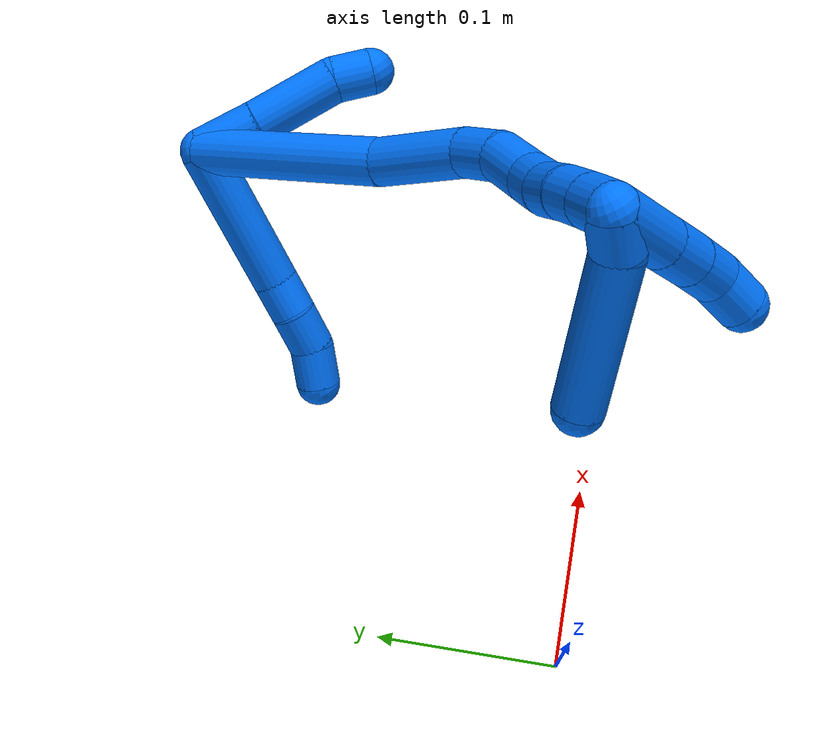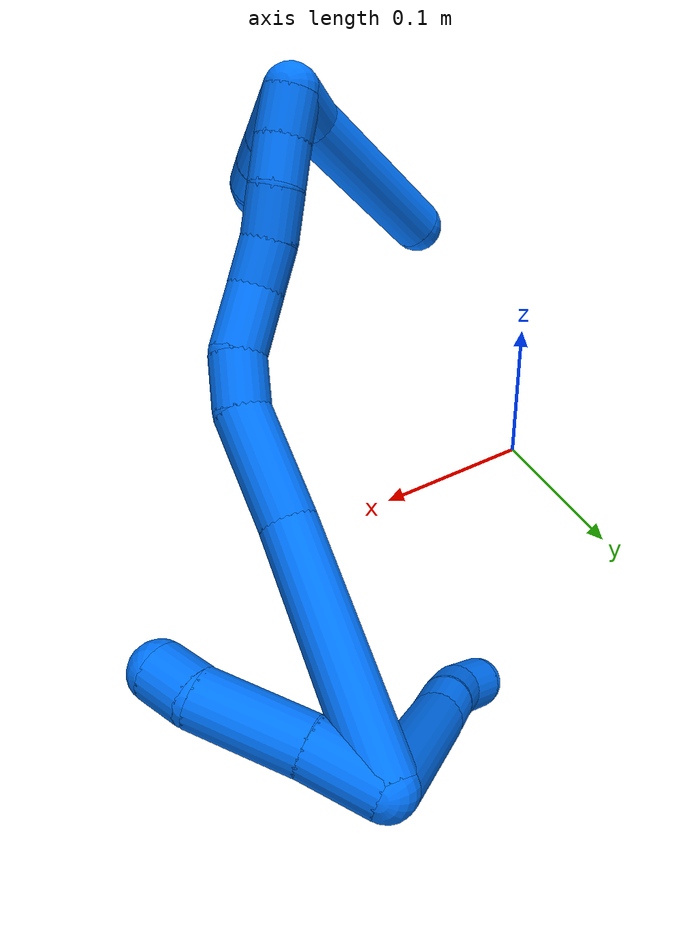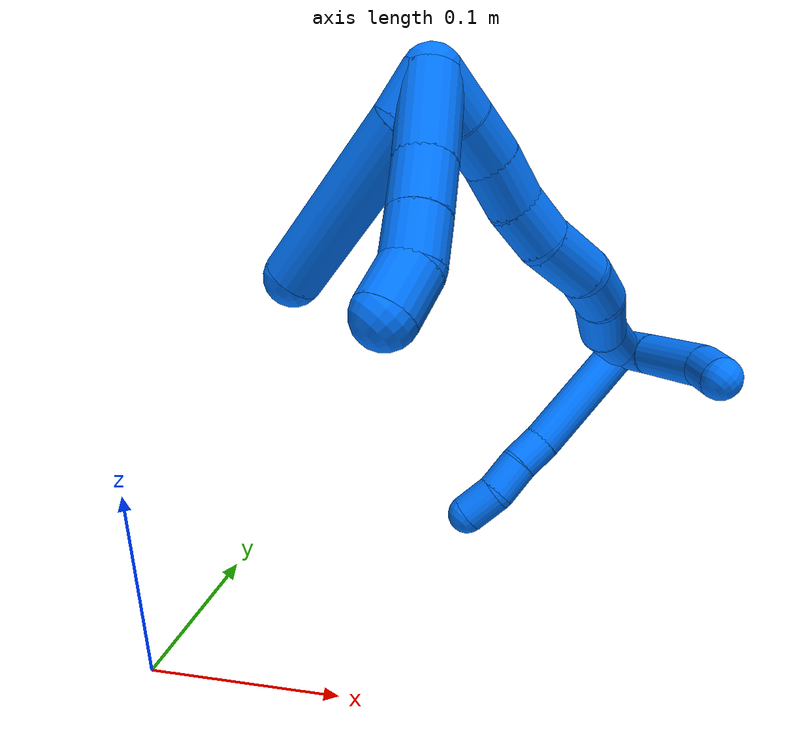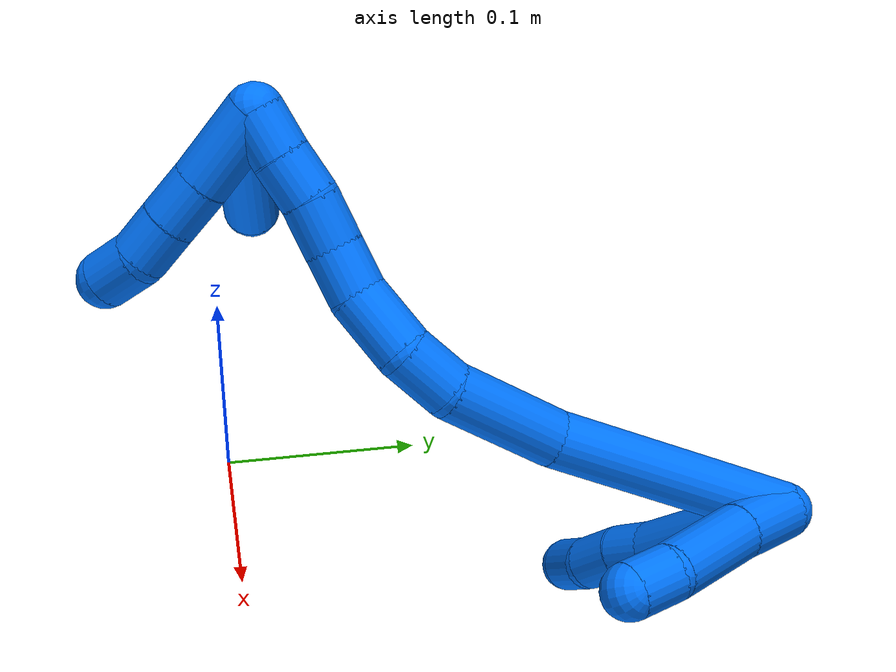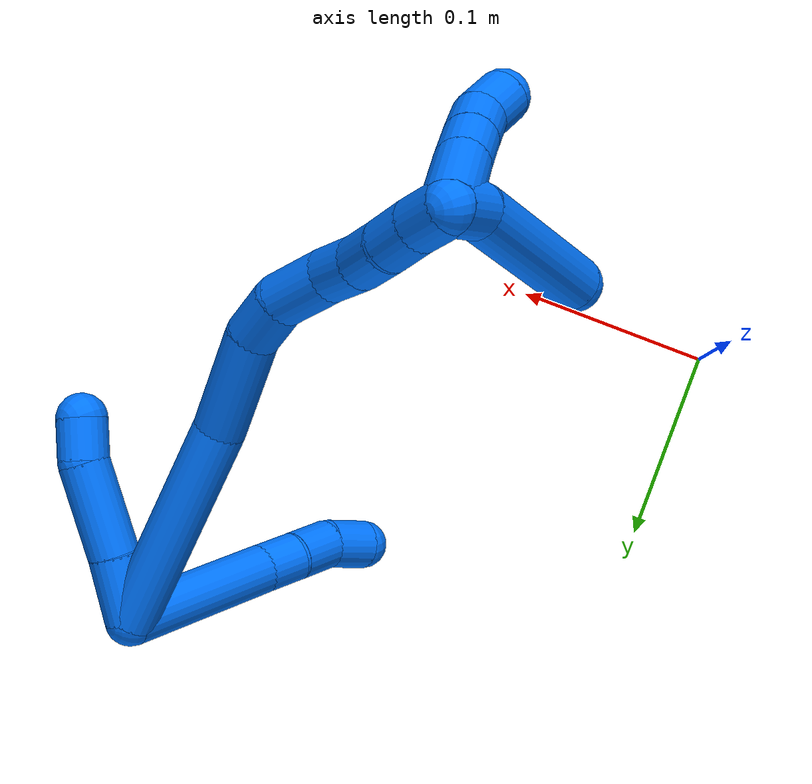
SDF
<sdf version="1.7">
 <world name="default">
  <model name="14">
   <static>0</static>
   <link name="14">
    <collision name="collision-cylinder-e_1_2_8">
     <pose>0.000751 0.001036 -0.041264 -3.1165 0.018184 -1.254</pose>
     <geometry><cylinder><radius>0.0125</radius><length>0.082567</length></cylinder></geometry>
     <surface>
      <friction><ode><mu>1.16</mu><mu2>1.16</mu2><slip1>0</slip1><slip2>0</slip2></ode></friction>
      <contact><ode><kp>1e+06</kp><kd>1</kd><max_vel>0</max_vel><min_depth>0.001</min_depth></ode></contact>
     </surface>
    </collision>
    <visual name="visual-cylinder-e_1_2_8">
     <pose>0.000751 0.001036 -0.041264 -3.1165 0.018184 -1.254</pose>
     <geometry><cylinder><radius>0.0125</radius><length>0.082567</length></cylinder></geometry>
     <material><ambient>0 0.462745 1 1</ambient></material>
    </visual>
    <collision name="collision-cylinder-e_2_8_9">
     <pose>0.000834 0.001408 -0.092877 3.07752 -0.064238 -1.57336</pose>
     <geometry><cylinder><radius>0.0125</radius><length>0.020785</length></cylinder></geometry>
     <surface>
      <friction><ode><mu>1.16</mu><mu2>1.16</mu2><slip1>0</slip1><slip2>0</slip2></ode></friction>
      <contact><ode><kp>1e+06</kp><kd>1</kd><max_vel>0</max_vel><min_depth>0.001</min_depth></ode></contact>
     </surface>
    </collision>
    <visual name="visual-cylinder-e_2_8_9">
     <pose>0.000834 0.001408 -0.092877 3.07752 -0.064238 -1.57336</pose>
     <geometry><cylinder><radius>0.0125</radius><length>0.020785</length></cylinder></geometry>
     <material><ambient>0 0.462745 1 1</ambient></material>
    </visual>
    <collision name="collision-cylinder-e_3_9_10">
     <pose>0.000639 0.001436 -0.114945 -3.08257 0.040168 -1.19493</pose>
     <geometry><cylinder><radius>0.0125</radius><length>0.023496</length></cylinder></geometry>
     <surface>
      <friction><ode><mu>1.16</mu><mu2>1.16</mu2><slip1>0</slip1><slip2>0</slip2></ode></friction>
      <contact><ode><kp>1e+06</kp><kd>1</kd><max_vel>0</max_vel><min_depth>0.001</min_depth></ode></contact>
     </surface>
    </collision>
    <visual name="visual-cylinder-e_3_9_10">
     <pose>0.000639 0.001436 -0.114945 -3.08257 0.040168 -1.19493</pose>
     <geometry><cylinder><radius>0.0125</radius><length>0.023496</length></cylinder></geometry>
     <material><ambient>0 0.462745 1 1</ambient></material>
    </visual>
    <collision name="collision-cylinder-e_4_10_6">
     <pose>-0.001495 0.004614 -0.137665 -2.91937 -0.227012 1.59229</pose>
     <geometry><cylinder><radius>0.0125</radius><length>0.023152</length></cylinder></geometry>
     <surface>
      <friction><ode><mu>1.16</mu><mu2>1.16</mu2><slip1>0</slip1><slip2>0</slip2></ode></friction>
      <contact><ode><kp>1e+06</kp><kd>1</kd><max_vel>0</max_vel><min_depth>0.001</min_depth></ode></contact>
     </surface>
    </collision>
    <visual name="visual-cylinder-e_4_10_6">
     <pose>-0.001495 0.004614 -0.137665 -2.91937 -0.227012 1.59229</pose>
     <geometry><cylinder><radius>0.0125</radius><length>0.023152</length></cylinder></geometry>
     <material><ambient>0 0.462745 1 1</ambient></material>
    </visual>
    <collision name="collision-cylinder-e_1_2_11">
     <pose>0.010442 -0.012531 1e-05 1.56998 0.694715 0.694191</pose>
     <geometry><cylinder><radius>0.0125</radius><length>0.032622</length></cylinder></geometry>
     <surface>
      <friction><ode><mu>1.16</mu><mu2>1.16</mu2><slip1>0</slip1><slip2>0</slip2></ode></friction>
      <contact><ode><kp>1e+06</kp><kd>1</kd><max_vel>0</max_vel><min_depth>0.001</min_depth></ode></contact>
     </surface>
    </collision>
    <visual name="visual-cylinder-e_1_2_11">
     <pose>0.010442 -0.012531 1e-05 1.56998 0.694715 0.694191</pose>
     <geometry><cylinder><radius>0.0125</radius><length>0.032622</length></cylinder></geometry>
     <material><ambient>0 0.462745 1 1</ambient></material>
    </visual>
    <collision name="collision-cylinder-e_2_11_12">
     <pose>0.036953 -0.042001 0.000662 1.53296 0.758696 0.733015</pose>
     <geometry><cylinder><radius>0.0125</radius><length>0.046716</length></cylinder></geometry>
     <surface>
      <friction><ode><mu>1.16</mu><mu2>1.16</mu2><slip1>0</slip1><slip2>0</slip2></ode></friction>
      <contact><ode><kp>1e+06</kp><kd>1</kd><max_vel>0</max_vel><min_depth>0.001</min_depth></ode></contact>
     </surface>
    </collision>
    <visual name="visual-cylinder-e_2_11_12">
     <pose>0.036953 -0.042001 0.000662 1.53296 0.758696 0.733015</pose>
     <geometry><cylinder><radius>0.0125</radius><length>0.046716</length></cylinder></geometry>
     <material><ambient>0 0.462745 1 1</ambient></material>
    </visual>
    <collision name="collision-cylinder-e_3_12_5">
     <pose>0.059621 -0.06644 -0.001334 1.90887 0.692808 0.942469</pose>
     <geometry><cylinder><radius>0.0125</radius><length>0.020663</length></cylinder></geometry>
     <surface>
      <friction><ode><mu>1.16</mu><mu2>1.16</mu2><slip1>0</slip1><slip2>0</slip2></ode></friction>
      <contact><ode><kp>1e+06</kp><kd>1</kd><max_vel>0</max_vel><min_depth>0.001</min_depth></ode></contact>
     </surface>
    </collision>
    <visual name="visual-cylinder-e_3_12_5">
     <pose>0.059621 -0.06644 -0.001334 1.90887 0.692808 0.942469</pose>
     <geometry><cylinder><radius>0.0125</radius><length>0.020663</length></cylinder></geometry>
     <material><ambient>0 0.462745 1 1</ambient></material>
    </visual>
    <collision name="collision-cylinder-e_1_2_13">
     <pose>0.002091 -0.051853 -0.016743 1.88311 0.038354 0.052682</pose>
     <geometry><cylinder><radius>0.0125</radius><length>0.109059</length></cylinder></geometry>
     <surface>
      <friction><ode><mu>1.16</mu><mu2>1.16</mu2><slip1>0</slip1><slip2>0</slip2></ode></friction>
      <contact><ode><kp>1e+06</kp><kd>1</kd><max_vel>0</max_vel><min_depth>0.001</min_depth></ode></contact>
     </surface>
    </collision>
    <visual name="visual-cylinder-e_1_2_13">
     <pose>0.002091 -0.051853 -0.016743 1.88311 0.038354 0.052682</pose>
     <geometry><cylinder><radius>0.0125</radius><length>0.109059</length></cylinder></geometry>
     <material><ambient>0 0.462745 1 1</ambient></material>
    </visual>
    <collision name="collision-cylinder-e_2_13_14">
     <pose>0.004019 -0.129403 -0.036844 1.70077 -0.00627 -0.007143</pose>
     <geometry><cylinder><radius>0.0125</radius><length>0.05183</length></cylinder></geometry>
     <surface>
      <friction><ode><mu>1.16</mu><mu2>1.16</mu2><slip1>0</slip1><slip2>0</slip2></ode></friction>
      <contact><ode><kp>1e+06</kp><kd>1</kd><max_vel>0</max_vel><min_depth>0.001</min_depth></ode></contact>
     </surface>
    </collision>
    <visual name="visual-cylinder-e_2_13_14">
     <pose>0.004019 -0.129403 -0.036844 1.70077 -0.00627 -0.007143</pose>
     <geometry><cylinder><radius>0.0125</radius><length>0.05183</length></cylinder></geometry>
     <material><ambient>0 0.462745 1 1</ambient></material>
    </visual>
    <collision name="collision-cylinder-e_3_14_15">
     <pose>5.5e-05 -0.166635 -0.042086 1.73262 -0.314459 -0.368799</pose>
     <geometry><cylinder><radius>0.0125</radius><length>0.024584</length></cylinder></geometry>
     <surface>
      <friction><ode><mu>1.16</mu><mu2>1.16</mu2><slip1>0</slip1><slip2>0</slip2></ode></friction>
      <contact><ode><kp>1e+06</kp><kd>1</kd><max_vel>0</max_vel><min_depth>0.001</min_depth></ode></contact>
     </surface>
    </collision>
    <visual name="visual-cylinder-e_3_14_15">
     <pose>5.5e-05 -0.166635 -0.042086 1.73262 -0.314459 -0.368799</pose>
     <geometry><cylinder><radius>0.0125</radius><length>0.024584</length></cylinder></geometry>
     <material><ambient>0 0.462745 1 1</ambient></material>
    </visual>
    <collision name="collision-cylinder-e_4_15_16">
     <pose>-0.012336 -0.189575 -0.047932 1.90519 -0.61839 -0.844304</pose>
     <geometry><cylinder><radius>0.0125</radius><length>0.029633</length></cylinder></geometry>
     <surface>
      <friction><ode><mu>1.16</mu><mu2>1.16</mu2><slip1>0</slip1><slip2>0</slip2></ode></friction>
      <contact><ode><kp>1e+06</kp><kd>1</kd><max_vel>0</max_vel><min_depth>0.001</min_depth></ode></contact>
     </surface>
    </collision>
    <visual name="visual-cylinder-e_4_15_16">
     <pose>-0.012336 -0.189575 -0.047932 1.90519 -0.61839 -0.844304</pose>
     <geometry><cylinder><radius>0.0125</radius><length>0.029633</length></cylinder></geometry>
     <material><ambient>0 0.462745 1 1</ambient></material>
    </visual>
    <collision name="collision-cylinder-e_5_16_17">
     <pose>-0.0283 -0.208878 -0.052403 1.63522 -0.749967 -0.794945</pose>
     <geometry><cylinder><radius>0.0125</radius><length>0.021636</length></cylinder></geometry>
     <surface>
      <friction><ode><mu>1.16</mu><mu2>1.16</mu2><slip1>0</slip1><slip2>0</slip2></ode></friction>
      <contact><ode><kp>1e+06</kp><kd>1</kd><max_vel>0</max_vel><min_depth>0.001</min_depth></ode></contact>
     </surface>
    </collision>
    <visual name="visual-cylinder-e_5_16_17">
     <pose>-0.0283 -0.208878 -0.052403 1.63522 -0.749967 -0.794945</pose>
     <geometry><cylinder><radius>0.0125</radius><length>0.021636</length></cylinder></geometry>
     <material><ambient>0 0.462745 1 1</ambient></material>
    </visual>
    <collision name="collision-cylinder-e_6_17_18">
     <pose>-0.042401 -0.225502 -0.052036 1.4706 -0.654426 -0.59574</pose>
     <geometry><cylinder><radius>0.0125</radius><length>0.022105</length></cylinder></geometry>
     <surface>
      <friction><ode><mu>1.16</mu><mu2>1.16</mu2><slip1>0</slip1><slip2>0</slip2></ode></friction>
      <contact><ode><kp>1e+06</kp><kd>1</kd><max_vel>0</max_vel><min_depth>0.001</min_depth></ode></contact>
     </surface>
    </collision>
    <visual name="visual-cylinder-e_6_17_18">
     <pose>-0.042401 -0.225502 -0.052036 1.4706 -0.654426 -0.59574</pose>
     <geometry><cylinder><radius>0.0125</radius><length>0.022105</length></cylinder></geometry>
     <material><ambient>0 0.462745 1 1</ambient></material>
    </visual>
    <collision name="collision-cylinder-e_7_18_19">
     <pose>-0.054805 -0.242626 -0.051847 1.65254 -0.592801 -0.640094</pose>
     <geometry><cylinder><radius>0.0125</radius><length>0.020321</length></cylinder></geometry>
     <surface>
      <friction><ode><mu>1.16</mu><mu2>1.16</mu2><slip1>0</slip1><slip2>0</slip2></ode></friction>
      <contact><ode><kp>1e+06</kp><kd>1</kd><max_vel>0</max_vel><min_depth>0.001</min_depth></ode></contact>
     </surface>
    </collision>
    <visual name="visual-cylinder-e_7_18_19">
     <pose>-0.054805 -0.242626 -0.051847 1.65254 -0.592801 -0.640094</pose>
     <geometry><cylinder><radius>0.0125</radius><length>0.020321</length></cylinder></geometry>
     <material><ambient>0 0.462745 1 1</ambient></material>
    </visual>
    <collision name="collision-cylinder-e_8_19_1">
     <pose>-0.066851 -0.259256 -0.052962 1.62267 -0.657922 -0.690311</pose>
     <geometry><cylinder><radius>0.0125</radius><length>0.020833</length></cylinder></geometry>
     <surface>
      <friction><ode><mu>1.16</mu><mu2>1.16</mu2><slip1>0</slip1><slip2>0</slip2></ode></friction>
      <contact><ode><kp>1e+06</kp><kd>1</kd><max_vel>0</max_vel><min_depth>0.001</min_depth></ode></contact>
     </surface>
    </collision>
    <visual name="visual-cylinder-e_8_19_1">
     <pose>-0.066851 -0.259256 -0.052962 1.62267 -0.657922 -0.690311</pose>
     <geometry><cylinder><radius>0.0125</radius><length>0.020833</length></cylinder></geometry>
     <material><ambient>0 0.462745 1 1</ambient></material>
    </visual>
    <collision name="collision-cylinder-e_1_1_20">
     <pose>-0.072666 -0.263992 -0.063123 -2.79681 0.053557 -0.305272</pose>
     <geometry><cylinder><radius>0.0125</radius><length>0.020714</length></cylinder></geometry>
     <surface>
      <friction><ode><mu>1.16</mu><mu2>1.16</mu2><slip1>0</slip1><slip2>0</slip2></ode></friction>
      <contact><ode><kp>1e+06</kp><kd>1</kd><max_vel>0</max_vel><min_depth>0.001</min_depth></ode></contact>
     </surface>
    </collision>
    <visual name="visual-cylinder-e_1_1_20">
     <pose>-0.072666 -0.263992 -0.063123 -2.79681 0.053557 -0.305272</pose>
     <geometry><cylinder><radius>0.0125</radius><length>0.020714</length></cylinder></geometry>
     <material><ambient>0 0.462745 1 1</ambient></material>
    </visual>
    <collision name="collision-cylinder-e_2_20_4">
     <pose>-0.078566 -0.2383 -0.105063 -2.53817 -0.163541 0.514983</pose>
     <geometry><cylinder><radius>0.0125</radius><length>0.079286</length></cylinder></geometry>
     <surface>
      <friction><ode><mu>1.16</mu><mu2>1.16</mu2><slip1>0</slip1><slip2>0</slip2></ode></friction>
      <contact><ode><kp>1e+06</kp><kd>1</kd><max_vel>0</max_vel><min_depth>0.001</min_depth></ode></contact>
     </surface>
    </collision>
    <visual name="visual-cylinder-e_2_20_4">
     <pose>-0.078566 -0.2383 -0.105063 -2.53817 -0.163541 0.514983</pose>
     <geometry><cylinder><radius>0.0125</radius><length>0.079286</length></cylinder></geometry>
     <material><ambient>0 0.462745 1 1</ambient></material>
    </visual>
    <collision name="collision-cylinder-e_1_1_21">
     <pose>-0.061546 -0.267736 -0.067778 3.12432 0.681561 3.0929</pose>
     <geometry><cylinder><radius>0.0125</radius><length>0.037061</length></cylinder></geometry>
     <surface>
      <friction><ode><mu>1.16</mu><mu2>1.16</mu2><slip1>0</slip1><slip2>0</slip2></ode></friction>
      <contact><ode><kp>1e+06</kp><kd>1</kd><max_vel>0</max_vel><min_depth>0.001</min_depth></ode></contact>
     </surface>
    </collision>
    <visual name="visual-cylinder-e_1_1_21">
     <pose>-0.061546 -0.267736 -0.067778 3.12432 0.681561 3.0929</pose>
     <geometry><cylinder><radius>0.0125</radius><length>0.037061</length></cylinder></geometry>
     <material><ambient>0 0.462745 1 1</ambient></material>
    </visual>
    <collision name="collision-cylinder-e_2_21_22">
     <pose>-0.043218 -0.268477 -0.090746 3.08416 0.658867 2.97396</pose>
     <geometry><cylinder><radius>0.0125</radius><length>0.021738</length></cylinder></geometry>
     <surface>
      <friction><ode><mu>1.16</mu><mu2>1.16</mu2><slip1>0</slip1><slip2>0</slip2></ode></friction>
      <contact><ode><kp>1e+06</kp><kd>1</kd><max_vel>0</max_vel><min_depth>0.001</min_depth></ode></contact>
     </surface>
    </collision>
    <visual name="visual-cylinder-e_2_21_22">
     <pose>-0.043218 -0.268477 -0.090746 3.08416 0.658867 2.97396</pose>
     <geometry><cylinder><radius>0.0125</radius><length>0.021738</length></cylinder></geometry>
     <material><ambient>0 0.462745 1 1</ambient></material>
    </visual>
    <collision name="collision-cylinder-e_3_22_23">
     <pose>-0.030482 -0.269261 -0.107515 3.10622 0.63849 3.03468</pose>
     <geometry><cylinder><radius>0.0125</radius><length>0.02041</length></cylinder></geometry>
     <surface>
      <friction><ode><mu>1.16</mu><mu2>1.16</mu2><slip1>0</slip1><slip2>0</slip2></ode></friction>
      <contact><ode><kp>1e+06</kp><kd>1</kd><max_vel>0</max_vel><min_depth>0.001</min_depth></ode></contact>
     </surface>
    </collision>
    <visual name="visual-cylinder-e_3_22_23">
     <pose>-0.030482 -0.269261 -0.107515 3.10622 0.63849 3.03468</pose>
     <geometry><cylinder><radius>0.0125</radius><length>0.02041</length></cylinder></geometry>
     <material><ambient>0 0.462745 1 1</ambient></material>
    </visual>
    <collision name="collision-cylinder-e_4_23_3">
     <pose>-0.021208 -0.271215 -0.125457 2.97255 0.31211 2.15368</pose>
     <geometry><cylinder><radius>0.0125</radius><length>0.020792</length></cylinder></geometry>
     <surface>
      <friction><ode><mu>1.16</mu><mu2>1.16</mu2><slip1>0</slip1><slip2>0</slip2></ode></friction>
      <contact><ode><kp>1e+06</kp><kd>1</kd><max_vel>0</max_vel><min_depth>0.001</min_depth></ode></contact>
     </surface>
    </collision>
    <visual name="visual-cylinder-e_4_23_3">
     <pose>-0.021208 -0.271215 -0.125457 2.97255 0.31211 2.15368</pose>
     <geometry><cylinder><radius>0.0125</radius><length>0.020792</length></cylinder></geometry>
     <material><ambient>0 0.462745 1 1</ambient></material>
    </visual>
    <collision name="collision-sphere-3">
     <pose>-0.018015 -0.272879 -0.13521 0 -0 0</pose>
     <geometry><sphere><radius>0.0125</radius></sphere></geometry>
     <surface>
      <friction><ode><mu>1.16</mu><mu2>1.16</mu2><slip1>0</slip1><slip2>0</slip2></ode></friction>
      <contact><ode><kp>1e+06</kp><kd>1</kd><max_vel>0</max_vel><min_depth>0.001</min_depth></ode></contact>
     </surface>
    </collision>
    <visual name="visual-sphere-3">
     <pose>-0.018015 -0.272879 -0.13521 0 -0 0</pose>
     <geometry><sphere><radius>0.0125</radius></sphere></geometry>
     <material><ambient>0 0.462745 1 1</ambient></material>
    </visual>
    <collision name="collision-sphere-23">
     <pose>-0.0244 -0.26955 -0.115704 0 -0 0</pose>
     <geometry><sphere><radius>0.0125</radius></sphere></geometry>
     <surface>
      <friction><ode><mu>1.16</mu><mu2>1.16</mu2><slip1>0</slip1><slip2>0</slip2></ode></friction>
      <contact><ode><kp>1e+06</kp><kd>1</kd><max_vel>0</max_vel><min_depth>0.001</min_depth></ode></contact>
     </surface>
    </collision>
    <visual name="visual-sphere-23">
     <pose>-0.0244 -0.26955 -0.115704 0 -0 0</pose>
     <geometry><sphere><radius>0.0125</radius></sphere></geometry>
     <material><ambient>0 0.462745 1 1</ambient></material>
    </visual>
    <collision name="collision-sphere-22">
     <pose>-0.036564 -0.268971 -0.099326 0 -0 0</pose>
     <geometry><sphere><radius>0.0125</radius></sphere></geometry>
     <surface>
      <friction><ode><mu>1.16</mu><mu2>1.16</mu2><slip1>0</slip1><slip2>0</slip2></ode></friction>
      <contact><ode><kp>1e+06</kp><kd>1</kd><max_vel>0</max_vel><min_depth>0.001</min_depth></ode></contact>
     </surface>
    </collision>
    <visual name="visual-sphere-22">
     <pose>-0.036564 -0.268971 -0.099326 0 -0 0</pose>
     <geometry><sphere><radius>0.0125</radius></sphere></geometry>
     <material><ambient>0 0.462745 1 1</ambient></material>
    </visual>
    <collision name="collision-sphere-21">
     <pose>-0.049872 -0.267984 -0.082166 0 -0 0</pose>
     <geometry><sphere><radius>0.0125</radius></sphere></geometry>
     <surface>
      <friction><ode><mu>1.16</mu><mu2>1.16</mu2><slip1>0</slip1><slip2>0</slip2></ode></friction>
      <contact><ode><kp>1e+06</kp><kd>1</kd><max_vel>0</max_vel><min_depth>0.001</min_depth></ode></contact>
     </surface>
    </collision>
    <visual name="visual-sphere-21">
     <pose>-0.049872 -0.267984 -0.082166 0 -0 0</pose>
     <geometry><sphere><radius>0.0125</radius></sphere></geometry>
     <material><ambient>0 0.462745 1 1</ambient></material>
    </visual>
    <collision name="collision-sphere-4">
     <pose>-0.08502 -0.216105 -0.13727 0 -0 0</pose>
     <geometry><sphere><radius>0.0125</radius></sphere></geometry>
     <surface>
      <friction><ode><mu>1.16</mu><mu2>1.16</mu2><slip1>0</slip1><slip2>0</slip2></ode></friction>
      <contact><ode><kp>1e+06</kp><kd>1</kd><max_vel>0</max_vel><min_depth>0.001</min_depth></ode></contact>
     </surface>
    </collision>
    <visual name="visual-sphere-4">
     <pose>-0.08502 -0.216105 -0.13727 0 -0 0</pose>
     <geometry><sphere><radius>0.0125</radius></sphere></geometry>
     <material><ambient>0 0.462745 1 1</ambient></material>
    </visual>
    <collision name="collision-sphere-20">
     <pose>-0.072112 -0.260496 -0.072857 0 -0 0</pose>
     <geometry><sphere><radius>0.0125</radius></sphere></geometry>
     <surface>
      <friction><ode><mu>1.16</mu><mu2>1.16</mu2><slip1>0</slip1><slip2>0</slip2></ode></friction>
      <contact><ode><kp>1e+06</kp><kd>1</kd><max_vel>0</max_vel><min_depth>0.001</min_depth></ode></contact>
     </surface>
    </collision>
    <visual name="visual-sphere-20">
     <pose>-0.072112 -0.260496 -0.072857 0 -0 0</pose>
     <geometry><sphere><radius>0.0125</radius></sphere></geometry>
     <material><ambient>0 0.462745 1 1</ambient></material>
    </visual>
    <collision name="collision-sphere-11">
     <pose>0.020883 -0.025061 2.1e-05 0 -0 0</pose>
     <geometry><sphere><radius>0.0125</radius></sphere></geometry>
     <surface>
      <friction><ode><mu>1.16</mu><mu2>1.16</mu2><slip1>0</slip1><slip2>0</slip2></ode></friction>
      <contact><ode><kp>1e+06</kp><kd>1</kd><max_vel>0</max_vel><min_depth>0.001</min_depth></ode></contact>
     </surface>
    </collision>
    <visual name="visual-sphere-11">
     <pose>0.020883 -0.025061 2.1e-05 0 -0 0</pose>
     <geometry><sphere><radius>0.0125</radius></sphere></geometry>
     <material><ambient>0 0.462745 1 1</ambient></material>
    </visual>
    <collision name="collision-sphere-6">
     <pose>-0.0041 0.0071 -0.148666 0 -0 0</pose>
     <geometry><sphere><radius>0.0125</radius></sphere></geometry>
     <surface>
      <friction><ode><mu>1.16</mu><mu2>1.16</mu2><slip1>0</slip1><slip2>0</slip2></ode></friction>
      <contact><ode><kp>1e+06</kp><kd>1</kd><max_vel>0</max_vel><min_depth>0.001</min_depth></ode></contact>
     </surface>
    </collision>
    <visual name="visual-sphere-6">
     <pose>-0.0041 0.0071 -0.148666 0 -0 0</pose>
     <geometry><sphere><radius>0.0125</radius></sphere></geometry>
     <material><ambient>0 0.462745 1 1</ambient></material>
    </visual>
    <collision name="collision-sphere-10">
     <pose>0.001111 0.002129 -0.126663 0 -0 0</pose>
     <geometry><sphere><radius>0.0125</radius></sphere></geometry>
     <surface>
      <friction><ode><mu>1.16</mu><mu2>1.16</mu2><slip1>0</slip1><slip2>0</slip2></ode></friction>
      <contact><ode><kp>1e+06</kp><kd>1</kd><max_vel>0</max_vel><min_depth>0.001</min_depth></ode></contact>
     </surface>
    </collision>
    <visual name="visual-sphere-10">
     <pose>0.001111 0.002129 -0.126663 0 -0 0</pose>
     <geometry><sphere><radius>0.0125</radius></sphere></geometry>
     <material><ambient>0 0.462745 1 1</ambient></material>
    </visual>
    <collision name="collision-sphere-9">
     <pose>0.000167 0.000744 -0.103227 0 -0 0</pose>
     <geometry><sphere><radius>0.0125</radius></sphere></geometry>
     <surface>
      <friction><ode><mu>1.16</mu><mu2>1.16</mu2><slip1>0</slip1><slip2>0</slip2></ode></friction>
      <contact><ode><kp>1e+06</kp><kd>1</kd><max_vel>0</max_vel><min_depth>0.001</min_depth></ode></contact>
     </surface>
    </collision>
    <visual name="visual-sphere-9">
     <pose>0.000167 0.000744 -0.103227 0 -0 0</pose>
     <geometry><sphere><radius>0.0125</radius></sphere></geometry>
     <material><ambient>0 0.462745 1 1</ambient></material>
    </visual>
    <collision name="collision-sphere-2">
     <geometry><sphere><radius>0.0125</radius></sphere></geometry>
     <surface>
      <friction><ode><mu>1.16</mu><mu2>1.16</mu2><slip1>0</slip1><slip2>0</slip2></ode></friction>
      <contact><ode><kp>1e+06</kp><kd>1</kd><max_vel>0</max_vel><min_depth>0.001</min_depth></ode></contact>
     </surface>
    </collision>
    <visual name="visual-sphere-2">
     <geometry><sphere><radius>0.0125</radius></sphere></geometry>
     <material><ambient>0 0.462745 1 1</ambient></material>
    </visual>
    <collision name="collision-sphere-19">
     <pose>-0.060482 -0.251025 -0.052535 0 -0 0</pose>
     <geometry><sphere><radius>0.0125</radius></sphere></geometry>
     <surface>
      <friction><ode><mu>1.16</mu><mu2>1.16</mu2><slip1>0</slip1><slip2>0</slip2></ode></friction>
      <contact><ode><kp>1e+06</kp><kd>1</kd><max_vel>0</max_vel><min_depth>0.001</min_depth></ode></contact>
     </surface>
    </collision>
    <visual name="visual-sphere-19">
     <pose>-0.060482 -0.251025 -0.052535 0 -0 0</pose>
     <geometry><sphere><radius>0.0125</radius></sphere></geometry>
     <material><ambient>0 0.462745 1 1</ambient></material>
    </visual>
    <collision name="collision-sphere-8">
     <pose>0.001501 0.002072 -0.082528 0 -0 0</pose>
     <geometry><sphere><radius>0.0125</radius></sphere></geometry>
     <surface>
      <friction><ode><mu>1.16</mu><mu2>1.16</mu2><slip1>0</slip1><slip2>0</slip2></ode></friction>
      <contact><ode><kp>1e+06</kp><kd>1</kd><max_vel>0</max_vel><min_depth>0.001</min_depth></ode></contact>
     </surface>
    </collision>
    <visual name="visual-sphere-8">
     <pose>0.001501 0.002072 -0.082528 0 -0 0</pose>
     <geometry><sphere><radius>0.0125</radius></sphere></geometry>
     <material><ambient>0 0.462745 1 1</ambient></material>
    </visual>
    <collision name="collision-sphere-12">
     <pose>0.053023 -0.05894 0.001303 0 -0 0</pose>
     <geometry><sphere><radius>0.0125</radius></sphere></geometry>
     <surface>
      <friction><ode><mu>1.16</mu><mu2>1.16</mu2><slip1>0</slip1><slip2>0</slip2></ode></friction>
      <contact><ode><kp>1e+06</kp><kd>1</kd><max_vel>0</max_vel><min_depth>0.001</min_depth></ode></contact>
     </surface>
    </collision>
    <visual name="visual-sphere-12">
     <pose>0.053023 -0.05894 0.001303 0 -0 0</pose>
     <geometry><sphere><radius>0.0125</radius></sphere></geometry>
     <material><ambient>0 0.462745 1 1</ambient></material>
    </visual>
    <collision name="collision-sphere-5">
     <pose>0.06622 -0.073939 -0.00397 0 -0 0</pose>
     <geometry><sphere><radius>0.0125</radius></sphere></geometry>
     <surface>
      <friction><ode><mu>1.16</mu><mu2>1.16</mu2><slip1>0</slip1><slip2>0</slip2></ode></friction>
      <contact><ode><kp>1e+06</kp><kd>1</kd><max_vel>0</max_vel><min_depth>0.001</min_depth></ode></contact>
     </surface>
    </collision>
    <visual name="visual-sphere-5">
     <pose>0.06622 -0.073939 -0.00397 0 -0 0</pose>
     <geometry><sphere><radius>0.0125</radius></sphere></geometry>
     <material><ambient>0 0.462745 1 1</ambient></material>
    </visual>
    <collision name="collision-sphere-13">
     <pose>0.004182 -0.103707 -0.033485 0 -0 0</pose>
     <geometry><sphere><radius>0.0125</radius></sphere></geometry>
     <surface>
      <friction><ode><mu>1.16</mu><mu2>1.16</mu2><slip1>0</slip1><slip2>0</slip2></ode></friction>
      <contact><ode><kp>1e+06</kp><kd>1</kd><max_vel>0</max_vel><min_depth>0.001</min_depth></ode></contact>
     </surface>
    </collision>
    <visual name="visual-sphere-13">
     <pose>0.004182 -0.103707 -0.033485 0 -0 0</pose>
     <geometry><sphere><radius>0.0125</radius></sphere></geometry>
     <material><ambient>0 0.462745 1 1</ambient></material>
    </visual>
    <collision name="collision-sphere-14">
     <pose>0.003857 -0.155098 -0.040203 0 -0 0</pose>
     <geometry><sphere><radius>0.0125</radius></sphere></geometry>
     <surface>
      <friction><ode><mu>1.16</mu><mu2>1.16</mu2><slip1>0</slip1><slip2>0</slip2></ode></friction>
      <contact><ode><kp>1e+06</kp><kd>1</kd><max_vel>0</max_vel><min_depth>0.001</min_depth></ode></contact>
     </surface>
    </collision>
    <visual name="visual-sphere-14">
     <pose>0.003857 -0.155098 -0.040203 0 -0 0</pose>
     <geometry><sphere><radius>0.0125</radius></sphere></geometry>
     <material><ambient>0 0.462745 1 1</ambient></material>
    </visual>
    <collision name="collision-sphere-15">
     <pose>-0.003747 -0.178171 -0.04397 0 -0 0</pose>
     <geometry><sphere><radius>0.0125</radius></sphere></geometry>
     <surface>
      <friction><ode><mu>1.16</mu><mu2>1.16</mu2><slip1>0</slip1><slip2>0</slip2></ode></friction>
      <contact><ode><kp>1e+06</kp><kd>1</kd><max_vel>0</max_vel><min_depth>0.001</min_depth></ode></contact>
     </surface>
    </collision>
    <visual name="visual-sphere-15">
     <pose>-0.003747 -0.178171 -0.04397 0 -0 0</pose>
     <geometry><sphere><radius>0.0125</radius></sphere></geometry>
     <material><ambient>0 0.462745 1 1</ambient></material>
    </visual>
    <collision name="collision-sphere-16">
     <pose>-0.020926 -0.200979 -0.051894 0 -0 0</pose>
     <geometry><sphere><radius>0.0125</radius></sphere></geometry>
     <surface>
      <friction><ode><mu>1.16</mu><mu2>1.16</mu2><slip1>0</slip1><slip2>0</slip2></ode></friction>
      <contact><ode><kp>1e+06</kp><kd>1</kd><max_vel>0</max_vel><min_depth>0.001</min_depth></ode></contact>
     </surface>
    </collision>
    <visual name="visual-sphere-16">
     <pose>-0.020926 -0.200979 -0.051894 0 -0 0</pose>
     <geometry><sphere><radius>0.0125</radius></sphere></geometry>
     <material><ambient>0 0.462745 1 1</ambient></material>
    </visual>
    <collision name="collision-sphere-17">
     <pose>-0.035673 -0.216777 -0.052913 0 -0 0</pose>
     <geometry><sphere><radius>0.0125</radius></sphere></geometry>
     <surface>
      <friction><ode><mu>1.16</mu><mu2>1.16</mu2><slip1>0</slip1><slip2>0</slip2></ode></friction>
      <contact><ode><kp>1e+06</kp><kd>1</kd><max_vel>0</max_vel><min_depth>0.001</min_depth></ode></contact>
     </surface>
    </collision>
    <visual name="visual-sphere-17">
     <pose>-0.035673 -0.216777 -0.052913 0 -0 0</pose>
     <geometry><sphere><radius>0.0125</radius></sphere></geometry>
     <material><ambient>0 0.462745 1 1</ambient></material>
    </visual>
    <collision name="collision-sphere-18">
     <pose>-0.049129 -0.234228 -0.051159 0 -0 0</pose>
     <geometry><sphere><radius>0.0125</radius></sphere></geometry>
     <surface>
      <friction><ode><mu>1.16</mu><mu2>1.16</mu2><slip1>0</slip1><slip2>0</slip2></ode></friction>
      <contact><ode><kp>1e+06</kp><kd>1</kd><max_vel>0</max_vel><min_depth>0.001</min_depth></ode></contact>
     </surface>
    </collision>
    <visual name="visual-sphere-18">
     <pose>-0.049129 -0.234228 -0.051159 0 -0 0</pose>
     <geometry><sphere><radius>0.0125</radius></sphere></geometry>
     <material><ambient>0 0.462745 1 1</ambient></material>
    </visual>
    <collision name="collision-sphere-1">
     <pose>-0.07322 -0.267487 -0.05339 0 -0 0</pose>
     <geometry><sphere><radius>0.0125</radius></sphere></geometry>
     <surface>
      <friction><ode><mu>1.16</mu><mu2>1.16</mu2><slip1>0</slip1><slip2>0</slip2></ode></friction>
      <contact><ode><kp>1e+06</kp><kd>1</kd><max_vel>0</max_vel><min_depth>0.001</min_depth></ode></contact>
     </surface>
    </collision>
    <visual name="visual-sphere-1">
     <pose>-0.07322 -0.267487 -0.05339 0 -0 0</pose>
     <geometry><sphere><radius>0.0125</radius></sphere></geometry>
     <material><ambient>0 0.462745 1 1</ambient></material>
    </visual>
    <inertial>
     <pose>-0.016857 -0.128874 -0.054371 0 -0 0</pose>
     <mass>0.75</mass>
     <inertia>
      <ixx>0.000175</ixx>
      <ixy>0</ixy>
      <ixz>0</ixz>
      <iyy>-0.000104</iyy>
      <iyz>0</iyz>
      <izz>7.8e-05</izz>
     </inertia>
    </inertial>
   </link>
   <pose>0.223741 0.230436 0.112605 -0.792766 0.49779 -0.385084</pose>
  </model>
 </world>
</sdf>
